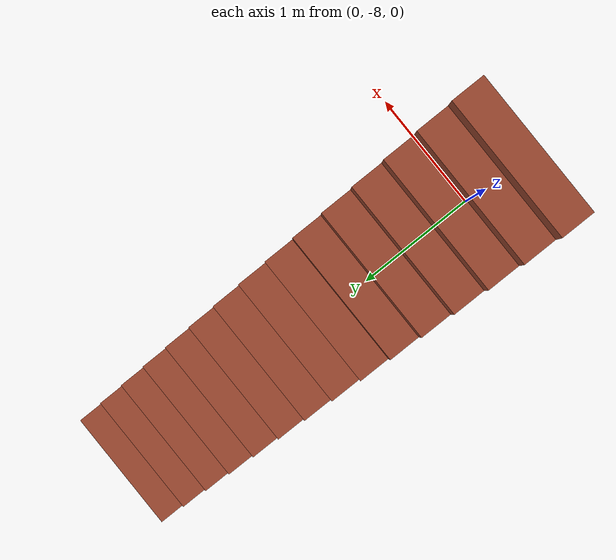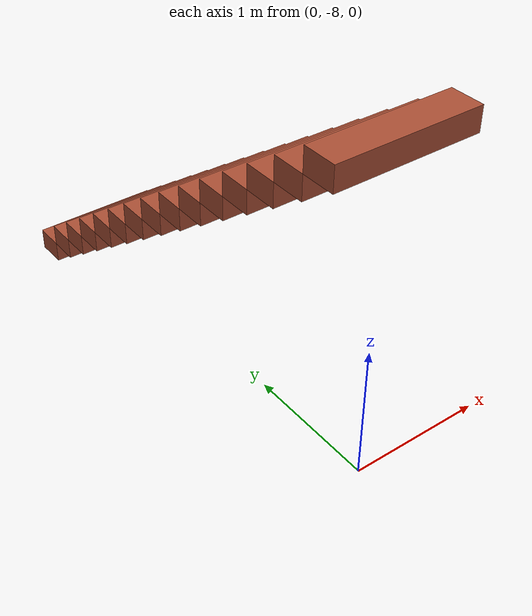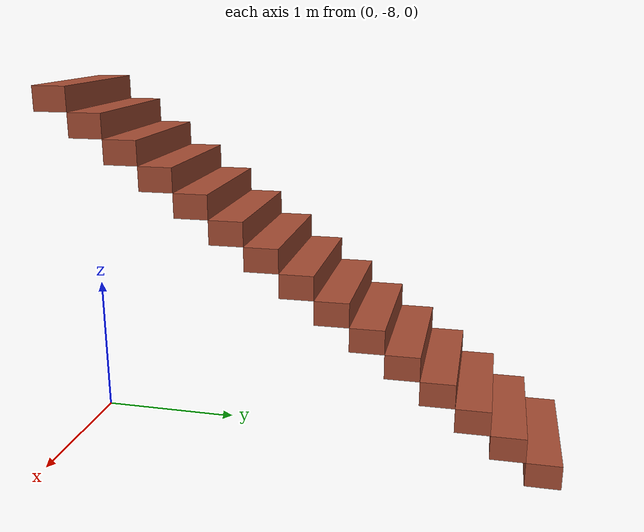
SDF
<?xml version='1.0'?>
<sdf version='1.7'>
  <model name='stair4'>
    <pose>0.046061 -4.05643 0 0 -0 0</pose>
    <link name='Stairs_1'>
      <visual name='Stairs_1_Visual_0'>
        <pose>0 -0.6731 0.083333 0 -0 0</pose>
        <geometry>
          <box>
            <size>1 0.233333 0.166667</size>
          </box>
        </geometry>
        <material>
          <script>
            <uri>file://media/materials/scripts/gazebo.material</uri>
            <name>Gazebo/Bricks</name>
          </script>
          <ambient>1 1 1 1</ambient>
        </material>
        <meta>
          <layer>0</layer>
        </meta>
      </visual>
      <collision name='Stairs_1_Collision_0'>
        <geometry>
          <box>
            <size>1 0.233333 0.166667</size>
          </box>
        </geometry>
        <pose>0 -0.6731 0.083333 0 -0 0</pose>
      </collision>
      <visual name='Stairs_1_Visual_1'>
        <pose>0 -0.906433 0.25 0 -0 0</pose>
        <geometry>
          <box>
            <size>1 0.233333 0.166667</size>
          </box>
        </geometry>
        <material>
          <script>
            <uri>file://media/materials/scripts/gazebo.material</uri>
            <name>Gazebo/Bricks</name>
          </script>
          <ambient>1 1 1 1</ambient>
        </material>
        <meta>
          <layer>0</layer>
        </meta>
      </visual>
      <collision name='Stairs_1_Collision_1'>
        <geometry>
          <box>
            <size>1 0.233333 0.166667</size>
          </box>
        </geometry>
        <pose>0 -0.906433 0.25 0 -0 0</pose>
      </collision>
      <visual name='Stairs_1_Visual_2'>
        <pose>0 -1.13977 0.416667 0 -0 0</pose>
        <geometry>
          <box>
            <size>1 0.233333 0.166667</size>
          </box>
        </geometry>
        <material>
          <script>
            <uri>file://media/materials/scripts/gazebo.material</uri>
            <name>Gazebo/Bricks</name>
          </script>
          <ambient>1 1 1 1</ambient>
        </material>
        <meta>
          <layer>0</layer>
        </meta>
      </visual>
      <collision name='Stairs_1_Collision_2'>
        <geometry>
          <box>
            <size>1 0.233333 0.166667</size>
          </box>
        </geometry>
        <pose>0 -1.13977 0.416667 0 -0 0</pose>
      </collision>
      <visual name='Stairs_1_Visual_3'>
        <pose>0 -1.3731 0.583333 0 -0 0</pose>
        <geometry>
          <box>
            <size>1 0.233333 0.166667</size>
          </box>
        </geometry>
        <material>
          <script>
            <uri>file://media/materials/scripts/gazebo.material</uri>
            <name>Gazebo/Bricks</name>
          </script>
          <ambient>1 1 1 1</ambient>
        </material>
        <meta>
          <layer>0</layer>
        </meta>
      </visual>
      <collision name='Stairs_1_Collision_3'>
        <geometry>
          <box>
            <size>1 0.233333 0.166667</size>
          </box>
        </geometry>
        <pose>0 -1.3731 0.583333 0 -0 0</pose>
      </collision>
      <visual name='Stairs_1_Visual_4'>
        <pose>0 -1.60643 0.75 0 -0 0</pose>
        <geometry>
          <box>
            <size>1 0.233333 0.166667</size>
          </box>
        </geometry>
        <material>
          <script>
            <uri>file://media/materials/scripts/gazebo.material</uri>
            <name>Gazebo/Bricks</name>
          </script>
          <ambient>1 1 1 1</ambient>
        </material>
        <meta>
          <layer>0</layer>
        </meta>
      </visual>
      <collision name='Stairs_1_Collision_4'>
        <geometry>
          <box>
            <size>1 0.233333 0.166667</size>
          </box>
        </geometry>
        <pose>0 -1.60643 0.75 0 -0 0</pose>
      </collision>
      <visual name='Stairs_1_Visual_5'>
        <pose>0 -1.83977 0.916667 0 -0 0</pose>
        <geometry>
          <box>
            <size>1 0.233333 0.166667</size>
          </box>
        </geometry>
        <material>
          <script>
            <uri>file://media/materials/scripts/gazebo.material</uri>
            <name>Gazebo/Bricks</name>
          </script>
          <ambient>1 1 1 1</ambient>
        </material>
        <meta>
          <layer>0</layer>
        </meta>
      </visual>
      <collision name='Stairs_1_Collision_5'>
        <geometry>
          <box>
            <size>1 0.233333 0.166667</size>
          </box>
        </geometry>
        <pose>0 -1.83977 0.916667 0 -0 0</pose>
      </collision>
      <visual name='Stairs_1_Visual_6'>
        <pose>0 -2.0731 1.08333 0 -0 0</pose>
        <geometry>
          <box>
            <size>1 0.233333 0.166667</size>
          </box>
        </geometry>
        <material>
          <script>
            <uri>file://media/materials/scripts/gazebo.material</uri>
            <name>Gazebo/Bricks</name>
          </script>
          <ambient>1 1 1 1</ambient>
        </material>
        <meta>
          <layer>0</layer>
        </meta>
      </visual>
      <collision name='Stairs_1_Collision_6'>
        <geometry>
          <box>
            <size>1 0.233333 0.166667</size>
          </box>
        </geometry>
        <pose>0 -2.0731 1.08333 0 -0 0</pose>
      </collision>
      <visual name='Stairs_1_Visual_7'>
        <pose>0 -2.30643 1.25 0 -0 0</pose>
        <geometry>
          <box>
            <size>1 0.233333 0.166667</size>
          </box>
        </geometry>
        <material>
          <script>
            <uri>file://media/materials/scripts/gazebo.material</uri>
            <name>Gazebo/Bricks</name>
          </script>
          <ambient>1 1 1 1</ambient>
        </material>
        <meta>
          <layer>0</layer>
        </meta>
      </visual>
      <collision name='Stairs_1_Collision_7'>
        <geometry>
          <box>
            <size>1 0.233333 0.166667</size>
          </box>
        </geometry>
        <pose>0 -2.30643 1.25 0 -0 0</pose>
      </collision>
      <visual name='Stairs_1_Visual_8'>
        <pose>0 -2.53977 1.41667 0 -0 0</pose>
        <geometry>
          <box>
            <size>1 0.233333 0.166667</size>
          </box>
        </geometry>
        <material>
          <script>
            <uri>file://media/materials/scripts/gazebo.material</uri>
            <name>Gazebo/Bricks</name>
          </script>
          <ambient>1 1 1 1</ambient>
        </material>
        <meta>
          <layer>0</layer>
        </meta>
      </visual>
      <collision name='Stairs_1_Collision_8'>
        <geometry>
          <box>
            <size>1 0.233333 0.166667</size>
          </box>
        </geometry>
        <pose>0 -2.53977 1.41667 0 -0 0</pose>
      </collision>
      <visual name='Stairs_1_Visual_9'>
        <pose>0 -2.7731 1.58333 0 -0 0</pose>
        <geometry>
          <box>
            <size>1 0.233333 0.166667</size>
          </box>
        </geometry>
        <material>
          <script>
            <uri>file://media/materials/scripts/gazebo.material</uri>
            <name>Gazebo/Bricks</name>
          </script>
          <ambient>1 1 1 1</ambient>
        </material>
        <meta>
          <layer>0</layer>
        </meta>
      </visual>
      <collision name='Stairs_1_Collision_9'>
        <geometry>
          <box>
            <size>1 0.233333 0.166667</size>
          </box>
        </geometry>
        <pose>0 -2.7731 1.58333 0 -0 0</pose>
      </collision>
      <visual name='Stairs_1_Visual_10'>
        <pose>0 -3.00643 1.75 0 -0 0</pose>
        <geometry>
          <box>
            <size>1 0.233333 0.166667</size>
          </box>
        </geometry>
        <material>
          <script>
            <uri>file://media/materials/scripts/gazebo.material</uri>
            <name>Gazebo/Bricks</name>
          </script>
          <ambient>1 1 1 1</ambient>
        </material>
        <meta>
          <layer>0</layer>
        </meta>
      </visual>
      <collision name='Stairs_1_Collision_10'>
        <geometry>
          <box>
            <size>1 0.233333 0.166667</size>
          </box>
        </geometry>
        <pose>0 -3.00643 1.75 0 -0 0</pose>
      </collision>
      <visual name='Stairs_1_Visual_11'>
        <pose>0 -3.23977 1.91667 0 -0 0</pose>
        <geometry>
          <box>
            <size>1 0.233333 0.166667</size>
          </box>
        </geometry>
        <material>
          <script>
            <uri>file://media/materials/scripts/gazebo.material</uri>
            <name>Gazebo/Bricks</name>
          </script>
          <ambient>1 1 1 1</ambient>
        </material>
        <meta>
          <layer>0</layer>
        </meta>
      </visual>
      <collision name='Stairs_1_Collision_11'>
        <geometry>
          <box>
            <size>1 0.233333 0.166667</size>
          </box>
        </geometry>
        <pose>0 -3.23977 1.91667 0 -0 0</pose>
      </collision>
      <visual name='Stairs_1_Visual_12'>
        <pose>0 -3.4731 2.08333 0 -0 0</pose>
        <geometry>
          <box>
            <size>1 0.233333 0.166667</size>
          </box>
        </geometry>
        <material>
          <script>
            <uri>file://media/materials/scripts/gazebo.material</uri>
            <name>Gazebo/Bricks</name>
          </script>
          <ambient>1 1 1 1</ambient>
        </material>
        <meta>
          <layer>0</layer>
        </meta>
      </visual>
      <collision name='Stairs_1_Collision_12'>
        <geometry>
          <box>
            <size>1 0.233333 0.166667</size>
          </box>
        </geometry>
        <pose>0 -3.4731 2.08333 0 -0 0</pose>
      </collision>
      <visual name='Stairs_1_Visual_13'>
        <pose>0 -3.70643 2.25 0 -0 0</pose>
        <geometry>
          <box>
            <size>1 0.233333 0.166667</size>
          </box>
        </geometry>
        <material>
          <script>
            <uri>file://media/materials/scripts/gazebo.material</uri>
            <name>Gazebo/Bricks</name>
          </script>
          <ambient>1 1 1 1</ambient>
        </material>
        <meta>
          <layer>0</layer>
        </meta>
      </visual>
      <collision name='Stairs_1_Collision_13'>
        <geometry>
          <box>
            <size>1 0.233333 0.166667</size>
          </box>
        </geometry>
        <pose>0 -3.70643 2.25 0 -0 0</pose>
      </collision>
      <visual name='Stairs_1_Visual_14'>
        <pose>0 -3.93977 2.41667 0 -0 0</pose>
        <geometry>
          <box>
            <size>1 0.233333 0.166667</size>
          </box>
        </geometry>
        <material>
          <script>
            <uri>file://media/materials/scripts/gazebo.material</uri>
            <name>Gazebo/Bricks</name>
          </script>
          <ambient>1 1 1 1</ambient>
        </material>
        <meta>
          <layer>0</layer>
        </meta>
      </visual>
      <collision name='Stairs_1_Collision_14'>
        <geometry>
          <box>
            <size>1 0.233333 0.166667</size>
          </box>
        </geometry>
        <pose>0 -3.93977 2.41667 0 -0 0</pose>
      </collision>
    </link>
    <static>1</static>
  </model>
</sdf>
